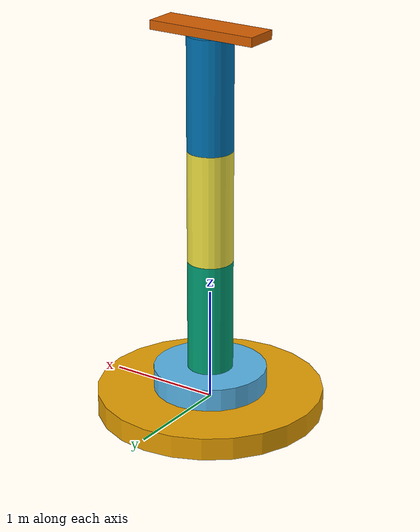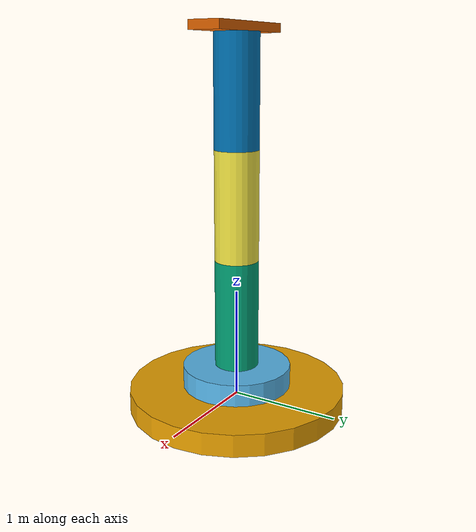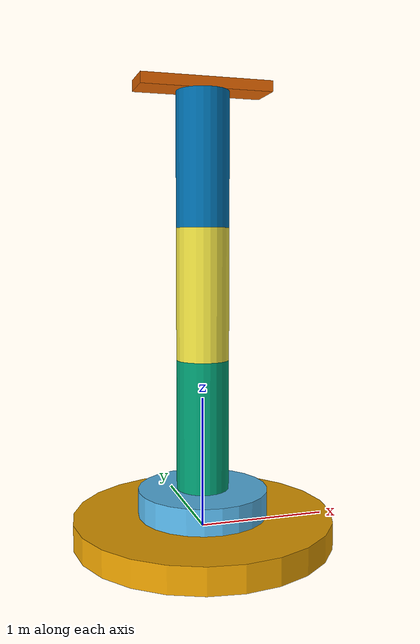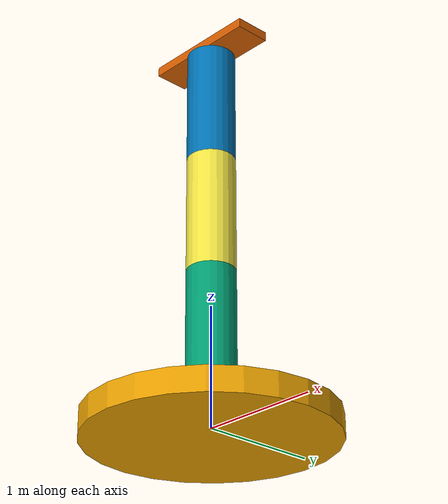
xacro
<?xml version="1.0" ?>

<robot name="mrm" xmlns:xacro="http://www.ros.org/wiki/xacro">

  <!-- BGN - Include -->
  <xacro:include filename="$(find ros_somat)/URDF/robot_parameters.xacro" />
  <xacro:include filename="$(find ros_somat)/URDF/links_joints.xacro" />
  <!-- END - Include -->

  <!-- BGN - Robot description -->
  <m_link_cylinder name="${link_00_name}"
              origin_rpy="0 0 0" origin_xyz="0 0 0"
              mass="1024"
              ixx="170.667" ixy="0" ixz="0"
              iyy="170.667" iyz="0"
              izz="170.667"
              radius="1" length="0.2" />

  <m_joint name="${link_00_name}__${link_01_name}" type="revolute"
           axis_xyz="0 0 1"
           origin_rpy="0 0 0" origin_xyz="0 0 0.1"
           parent="base_link" child="link_01"
           limit_e="1000" limit_l="0" limit_u="2.6" limit_v="0.5" />

  <transmission name="trans__${link_00_name}__${link_01_name}">
    <type>transmission_interface/SimpleTransmission</type>
    <joint name="${link_00_name}__${link_01_name}">
      <hardwareInterface>EffortJointInterface</hardwareInterface>
    </joint>
    <actuator name="motor__${link_00_name}__${link_01_name}">
      <mechanicalReduction>1</mechanicalReduction>
      <hardwareInterface>EffortJointInterface</hardwareInterface>
    </actuator>
  </transmission>

  <m_link_cylinder name="${link_01_name}"
              origin_rpy="0 0 0" origin_xyz="0 0 0.1"
              mass="20"
              ixx="12.679" ixy="0" ixz="0"
              iyy="12.679" iyz="0"
              izz="0.651"
              radius="0.5" length="0.2" />

  <m_joint name="${link_01_name}__${link_02_name}" type="revolute"
           axis_xyz="1 0 0"
           origin_rpy="0 0 0" origin_xyz="0 0 0.3"
           parent="link_01" child="link_02"
           limit_e="3000" limit_l="0" limit_u="2.6" limit_v="0.5" />

  <transmission name="trans__${link_01_name}__${link_02_name}">
    <type>transmission_interface/SimpleTransmission</type>
    <joint name="${link_01_name}__${link_02_name}">
      <hardwareInterface>EffortJointInterface</hardwareInterface>
    </joint>
    <actuator name="motor__${link_01_name}__${link_02_name}">
      <mechanicalReduction>1</mechanicalReduction>
      <hardwareInterface>EffortJointInterface</hardwareInterface>
    </actuator>
  </transmission>

  <m_link_cylinder name="${link_02_name}"
              origin_rpy="0 0 0" origin_xyz="0 0 0.4"
              mass="20"
              ixx="12.679" ixy="0" ixz="0"
              iyy="12.679" iyz="0"
              izz="0.651"
              radius="0.2" length="1" />

  <m_joint name="${link_02_name}__${link_03_name}" type="revolute"
           axis_xyz="1 0 0"
           origin_rpy="0 0 0" origin_xyz="0 0 0.9"
           parent="link_02" child="link_03"
           limit_e="1000" limit_l="-1.3" limit_u="1.3" limit_v="0.5" />

  <transmission name="trans__${link_02_name}__${link_03_name}">
    <type>transmission_interface/SimpleTransmission</type>
    <joint name="${link_02_name}__${link_03_name}">
      <hardwareInterface>EffortJointInterface</hardwareInterface>
    </joint>
    <actuator name="motor__${link_02_name}__${link_03_name}">
      <mechanicalReduction>1</mechanicalReduction>
      <hardwareInterface>EffortJointInterface</hardwareInterface>
    </actuator>
  </transmission>

  <m_link_cylinder name="${link_03_name}"
              origin_rpy="0 0 0" origin_xyz="0 0 0.5"
              mass="20"
              ixx="12.679" ixy="0" ixz="0"
              iyy="12.679" iyz="0"
              izz="0.651"
              radius="0.2" length="1" />

  <m_joint name="${link_03_name}__${link_04_name}" type="revolute"
           axis_xyz="1 0 0"
           origin_rpy="0 0 0" origin_xyz="0 0 1"
           parent="link_03" child="link_04"
           limit_e="1000" limit_l="-1.3" limit_u="1.3" limit_v="0.5" />

  <transmission name="trans__${link_03_name}__${link_04_name}">
    <type>transmission_interface/SimpleTransmission</type>
    <joint name="${link_03_name}__${link_04_name}">
      <hardwareInterface>EffortJointInterface</hardwareInterface>
    </joint>
    <actuator name="motor__${link_03_name}__${link_04_name}">
      <mechanicalReduction>1</mechanicalReduction>
      <hardwareInterface>EffortJointInterface</hardwareInterface>
    </actuator>
  </transmission>

  <m_link_cylinder name="${link_04_name}"
              origin_rpy="0 0 0" origin_xyz="0 0 0.5"
              mass="20"
              ixx="12.679" ixy="0" ixz="0"
              iyy="12.679" iyz="0"
              izz="0.651"
              radius="0.2" length="1" />

  <m_joint name="${link_04_name}__${link_05_name}" type="revolute"
           axis_xyz="1 0 0"
           origin_rpy="0 0 0" origin_xyz="0 0 1"
           parent="link_04" child="tool"
           limit_e="1000" limit_l="0" limit_u="0" limit_v="0.5" />

  <m_link_box name="${link_05_name}"
              origin_rpy="0 0 0" origin_xyz="0 0 0.04"
              mass="20"
              ixx="12.679" ixy="0" ixz="0"
              iyy="12.679" iyz="0"
              izz="0.651"
              size="1 0.3 0.08" />

  <gazebo>
    <plugin name="gazebo_ros_control" filename="libgazebo_ros_control.so">
      <robotNamespace>/mrm</robotNamespace>
      <legacyModeNS>true</legacyModeNS>
    </plugin>
  </gazebo>

</robot>

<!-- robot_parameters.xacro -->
<robot xmlns:xacro="http://www.ros.org/wiki/xacro">
  <xacro:property name="link_00_name" value="base_link" />
  <xacro:property name="link_01_name" value="link_01" />
  <xacro:property name="link_02_name" value="link_02" />
  <xacro:property name="link_03_name" value="link_03" />
  <xacro:property name="link_04_name" value="link_04" />
  <xacro:property name="link_05_name" value="tool" />
</robot>

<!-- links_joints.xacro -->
<!-- Defining macro functions to call easier -->

<robot xmlns:xacro="http://www.ros.org/wiki/xacro">

  <xacro:macro name="m_joint" params="name type axis_xyz origin_rpy origin_xyz parent child limit_e limit_l limit_u limit_v">
    <joint name="${name}" type="${type}">
      <axis xyz="${axis_xyz}" />
      <limit effort="${limit_e}" lower="${limit_l}" upper="${limit_u}" velocity="${limit_v}" />
      <origin rpy="${origin_rpy}" xyz="${origin_xyz}" />
      <parent link="${parent}" />
      <child link="${child}" />
    </joint>
    <transmission name="trans_${name}">
      <type>transmission_interface/SimpleTransmission</type>
      <joint name="${name}">
        <hardwareInterface>hardware_interface/EffortJointInterface</hardwareInterface>
      </joint>
      <actuator name="motor_${name}">
        <hardwareInterface>hardware_interface/EffortJointInterface</hardwareInterface>
        <mechanicalReduction>1</mechanicalReduction>
      </actuator>
    </transmission>
  </xacro:macro>

  <xacro:macro name="m_link_cylinder" params="name origin_xyz origin_rpy radius length mass ixx ixy ixz iyy iyz izz">
    <link name="${name}">
      <inertial>
        <mass value="${mass}" />
        <origin rpy="${origin_rpy}" xyz="${origin_xyz}" />
        <inertia ixx="${ixx}" ixy="${ixy}" ixz="${ixz}" iyy="${iyy}" iyz="${iyz}" izz="${izz}" />
      </inertial>
      <collision>
        <origin rpy="${origin_rpy}" xyz="${origin_xyz}" />
        <geometry>
          <cylinder radius="${radius}" length="${length}" />
        </geometry>
      </collision>
      <visual>
        <origin rpy="${origin_rpy}" xyz="${origin_xyz}" />
        <geometry>
          <cylinder radius="${radius}" length="${length}" />
        </geometry>
      </visual>
    </link>
  </xacro:macro>

  <xacro:macro name="m_link_box" params="name origin_xyz origin_rpy size mass ixx ixy ixz iyy iyz izz">
    <link name="${name}">
      <inertial>
        <mass value="${mass}" />
        <origin rpy="${origin_rpy}" xyz="${origin_xyz}" />
        <inertia ixx="${ixx}" ixy="${ixy}" ixz="${ixz}" iyy="${iyy}" iyz="${iyz}" izz="${izz}" />
      </inertial>
      <collision>
        <origin rpy="${origin_rpy}" xyz="${origin_xyz}" />
        <geometry>
          <box size="${size}" />
        </geometry>
      </collision>
      <visual>
        <origin rpy="${origin_rpy}" xyz="${origin_xyz}" />
        <geometry>
          <box size="${size}" />
        </geometry>
      </visual>
    </link>
  </xacro:macro>

  <xacro:macro name="m_link_mesh" params="name origin_xyz origin_rpy meshfile meshscale mass ixx ixy ixz iyy iyz izz">
    <link name="${name}">
      <inertial>
        <mass value="${mass}" />
        <origin rpy="${origin_rpy}" xyz="${origin_xyz}" />
        <inertia ixx="${ixx}" ixy="${ixy}" ixz="${ixz}" iyy="${iyy}" iyz="${iyz}" izz="${izz}" />
      </inertial>
      <collision>
        <origin rpy="${origin_rpy}" xyz="${origin_xyz}" />
        <geometry>
          <mesh filename="${meshfile}" scale="${meshscale}"/>
        </geometry>
      </collision>
      <visual>
        <origin rpy="${origin_rpy}" xyz="${origin_xyz}" />
        <geometry>
          <mesh filename="${meshfile}" scale="${meshscale}"/>
        </geometry>
        <material name="light_black"/>
      </visual>
    </link>
  </xacro:macro>

</robot>
